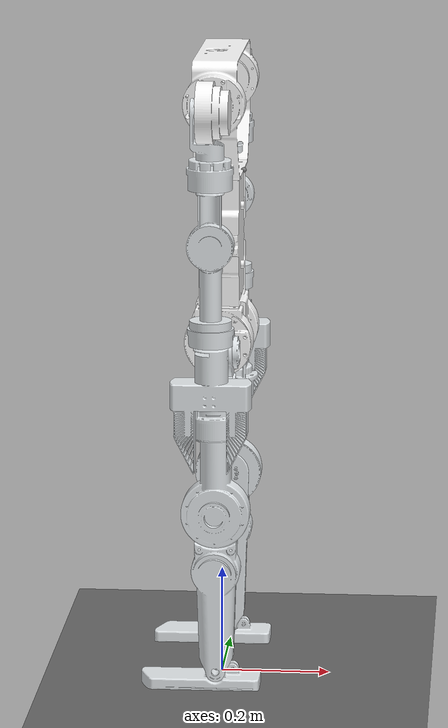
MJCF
<mujoco model="k-bot_sim">
  <default>
    <joint limited="true" damping="0.01" armature="0.01" frictionloss="0.01" />
    <geom condim="4" contype="1" conaffinity="15" friction="0.9 0.2 0.2" solref="0.001 2" />
    <motor ctrllimited="true" />
    <equality solref="0.001 2" />
    <default class="visualgeom">
      <geom material="visualgeom" condim="1" contype="0" conaffinity="0" />
    </default>
  </default>

  <compiler angle="radian" meshdir="meshes" eulerseq="zyx" autolimits="true" />

  <asset>
    <texture name="texplane" type="2d" builtin="checker" rgb1=".0 .0 .0" rgb2=".8 .8 .8" width="100" height="100" />
    <material name="matplane" reflectance="0." texture="texplane" texrepeat="1 1" texuniform="true" />
    <material name="body1-part_material" rgba="1 1 1 1" />
    <material name="imu_material" rgba="0.61568627 0.81176471 0.92941176 1" />
    <material name="shoulder_material" rgba="1 1 1 1" />
    <material name="shoulder_material_2" rgba="1 1 1 1" />
    <material name="arm1_top_material" rgba="0.89803922 0.91764706 0.92941176 1" />
    <material name="arm1_top_2_material" rgba="0.89803922 0.91764706 0.92941176 1" />
    <material name="leg0_shell_material" rgba="0.89803922 0.91764706 0.92941176 1" />
    <material name="leg0_shell_material_2" rgba="0.89803922 0.91764706 0.92941176 1" />
    <material name="arm2_shell_material" rgba="0.89803922 0.91764706 0.92941176 1" />
    <material name="arm2_shell_material_2" rgba="0.89803922 0.91764706 0.92941176 1" />
    <material name="leg1_shell_material" rgba="0.89803922 0.91764706 0.92941176 1" />
    <material name="leg1_shell3_material" rgba="0.89803922 0.91764706 0.92941176 1" />
    <material name="arm3_shell_material" rgba="0.89803922 0.91764706 0.92941176 1" />
    <material name="arm3_shell2_material" rgba="0.89803922 0.91764706 0.92941176 1" />
    <material name="leg2_shell_material" rgba="0.89803922 0.91764706 0.92941176 1" />
    <material name="leg2_shell_material_2" rgba="0.89803922 0.91764706 0.92941176 1" />
    <material name="hand_shell_material" rgba="0.89803922 0.91764706 0.92941176 1" />
    <material name="hand_shell_material_2" rgba="0.89803922 0.91764706 0.92941176 1" />
    <material name="leg3_shell1_material" rgba="0.89803922 0.91764706 0.92941176 1" />
    <material name="leg3_shell11_material" rgba="0.89803922 0.91764706 0.92941176 1" />
    <material name="foot3_material" rgba="0.89803922 0.91764706 0.92941176 1" />
    <material name="foot1_material" rgba="0.89803922 0.91764706 0.92941176 1" />
    <material name="default_material" rgba="0.7 0.7 0.7 1" />
    <mesh name="body1-part_collision.stl" file="body1-part_collision.stl" />
    <mesh name="body1-part.stl" file="body1-part.stl" />
    <mesh name="imu.stl" file="imu.stl" />
    <mesh name="shoulder.convex.stl" file="shoulder.convex.stl" />
    <mesh name="shoulder.stl" file="shoulder.stl" />
    <mesh name="arm1_top_collision.stl" file="arm1_top_collision.stl" />
    <mesh name="arm1_top.stl" file="arm1_top.stl" />
    <mesh name="arm2_shell_collision.stl" file="arm2_shell_collision.stl" />
    <mesh name="arm2_shell.stl" file="arm2_shell.stl" />
    <mesh name="arm3_shell.convex.stl" file="arm3_shell.convex.stl" />
    <mesh name="arm3_shell.stl" file="arm3_shell.stl" />
    <mesh name="hand_shell.convex.stl" file="hand_shell.convex.stl" />
    <mesh name="hand_shell.stl" file="hand_shell.stl" />
    <mesh name="shoulder_2.convex.stl" file="shoulder_2.convex.stl" />
    <mesh name="shoulder_2.stl" file="shoulder_2.stl" />
    <mesh name="arm1_top_2_collision.stl" file="arm1_top_2_collision.stl" />
    <mesh name="arm1_top_2.stl" file="arm1_top_2.stl" />
    <mesh name="arm2_shell_2_collision.stl" file="arm2_shell_2_collision.stl" />
    <mesh name="arm2_shell_2.stl" file="arm2_shell_2.stl" />
    <mesh name="arm3_shell2.convex.stl" file="arm3_shell2.convex.stl" />
    <mesh name="arm3_shell2.stl" file="arm3_shell2.stl" />
    <mesh name="hand_shell_2.convex.stl" file="hand_shell_2.convex.stl" />
    <mesh name="hand_shell_2.stl" file="hand_shell_2.stl" />
    <mesh name="leg0_shell.convex.stl" file="leg0_shell.convex.stl" />
    <mesh name="leg0_shell.stl" file="leg0_shell.stl" />
    <mesh name="leg1_shell_collision.stl" file="leg1_shell_collision.stl" />
    <mesh name="leg1_shell.stl" file="leg1_shell.stl" />
    <mesh name="leg2_shell_collision.stl" file="leg2_shell_collision.stl" />
    <mesh name="leg2_shell.stl" file="leg2_shell.stl" />
    <mesh name="leg3_shell1_collision.stl" file="leg3_shell1_collision.stl" />
    <mesh name="leg3_shell1.stl" file="leg3_shell1.stl" />
    <mesh name="foot1.convex.stl" file="foot1.convex.stl" />
    <mesh name="foot1.stl" file="foot1.stl" />
    <mesh name="leg0_shell_2.convex.stl" file="leg0_shell_2.convex.stl" />
    <mesh name="leg0_shell_2.stl" file="leg0_shell_2.stl" />
    <mesh name="leg1_shell3_collision.stl" file="leg1_shell3_collision.stl" />
    <mesh name="leg1_shell3.stl" file="leg1_shell3.stl" />
    <mesh name="leg2_shell_2_collision.stl" file="leg2_shell_2_collision.stl" />
    <mesh name="leg2_shell_2.stl" file="leg2_shell_2.stl" />
    <mesh name="leg3_shell11_collision.stl" file="leg3_shell11_collision.stl" />
    <mesh name="leg3_shell11.stl" file="leg3_shell11.stl" />
    <mesh name="foot3.convex.stl" file="foot3.convex.stl" />
    <mesh name="foot3.stl" file="foot3.stl" />
  </asset>

  <worldbody>
    <light directional="true" diffuse="0.4 0.4 0.4" specular="0.1 0.1 0.1" pos="0 0 5.0" dir="0 0 -1" castshadow="false" />
    <light directional="true" diffuse="0.6 0.6 0.6" specular="0.2 0.2 0.2" pos="0 0 4" dir="0 0 -1" />
    <geom name="ground" type="plane" pos="0 0 0" size="10 10 0.001" quat="1 0 0 0" material="matplane" condim="3" conaffinity="15" />
    <body name="base" pos="0.00000000 0.00000000 1.08214376" quat="1 0 0 0">
      <freejoint name="floating_base" />
      <body name="body1-part" pos="0.0 0.0009999996829318347 -7.963267107333194e-07" quat="0.7073882691671998 0.706825181105366 0.0 0.0">
        <inertial pos="-0.00015250656426878118 -0.21412907127294728 -9.448472646958203e-05" quat="1.0 0.0 0.0 0.0" mass="9.415837554" diaginertia="0.4061015675155548 0.09673200066103671 0.3215044414591054" />
        <geom name="body1-part_collision_0" pos="0 0 0" quat="1.0 0.0 0.0 0.0" type="mesh" mesh="body1-part_collision.stl" rgba="0 0 0 0" />
        <geom name="body1-part_visual" pos="0 0 0" quat="1.0 0.0 0.0 0.0" material="body1-part_material" type="mesh" mesh="body1-part.stl" />
        <body name="shoulder" pos="-1.0603758999999933e-05 0.018089562004361112 0.18849980999999996" quat="-5.717462085448636e-16 2.3205103233562514e-08 0.9999999999999996 2.3205103233562514e-08">
          <joint name="left_shoulder_pitch_03" type="hinge" range="0 3.1415927" axis="0 0 1" />
          <inertial pos="-0.0021439510530744978 5.4982726779193186e-05 -0.06648326479994976" quat="1.0 0.0 0.0 0.0" mass="1.1073556900000001" diaginertia="0.0014805078716798393 0.0010392374551579696 0.0009859290096334028" />
          <geom name="shoulder_collision_0" pos="0 0 0" quat="1.0 0.0 0.0 0.0" type="mesh" mesh="shoulder.convex.stl" rgba="0 0 0 0" />
          <geom name="shoulder_visual" pos="0 0 0" quat="1.0 0.0 0.0 0.0" material="shoulder_material" type="mesh" mesh="shoulder.stl" />
          <body name="arm1_top" pos="0.023511964 5.6278358217861975e-05 -0.06749999990621787" quat="0.5000000133974484 0.4999999999999999 0.4999999866025518 0.4999999999999999">
            <joint name="left_shoulder_roll_03" type="hinge" range="-3.6302848 0.47996554" axis="0 0 -1" />
            <inertial pos="-0.09948603961018607 -1.163023470429744e-06 -0.019082499611823907" quat="1.0 0.0 0.0 0.0" mass="0.5727323900000001" diaginertia="0.00045281536968184283 0.0010755180431184983 0.0010349421770212762" />
            <geom name="arm1_top_collision_0" pos="0 0 0" quat="1.0 0.0 0.0 0.0" type="mesh" mesh="arm1_top_collision.stl" rgba="0 0 0 0" />
            <geom name="arm1_top_visual" pos="0 0 0" quat="1.0 0.0 0.0 0.0" material="arm1_top_material" type="mesh" mesh="arm1_top.stl" />
            <body name="arm2_shell" pos="-0.14049999999999996 -1.5083317163881439e-09 -0.023499999129165863" quat="0.49999999820510366 -0.5000000249999992 0.499999988397448 -0.499999988397448">
              <joint name="left_shoulder_yaw_02" type="hinge" range="-1.5707963 1.5707963" axis="0 0 1" />
              <inertial pos="-0.0063392296102198434 0.0 -0.0904821109301573" quat="1.0 0.0 0.0 0.0" mass="0.51067762" diaginertia="0.0006753518437663356 0.0005324861864496071 0.0002548209726832716" />
              <geom name="arm2_shell_collision_0" pos="0 0 0" quat="1.0 0.0 0.0 0.0" type="mesh" mesh="arm2_shell_collision.stl" rgba="0 0 0 0" />
              <geom name="arm2_shell_visual" pos="0 0 0" quat="1.0 0.0 0.0 0.0" material="arm2_shell_material" type="mesh" mesh="arm2_shell.stl" />
              <body name="arm3_shell" pos="-0.027 -4.64102069112142e-11 -0.09799999974544849" quat="1.640848623142701e-08 -0.707106790659974 -1.6408485791763322e-08 -0.7071067717131209">
                <joint name="left_elbow_02" type="hinge" range="-2.5307274 0" axis="0 0 1" />
                <inertial pos="-0.14016867364356536 -3.717439453122118e-10 0.019432851288742756" quat="1.0 0.0 0.0 0.0" mass="0.5785364000000001" diaginertia="0.00042811744536643573 0.0013539990986906295 0.0013317921733241934" />
                <geom name="arm3_shell_collision_0" pos="0 0 0" quat="1.0 0.0 0.0 0.0" type="mesh" mesh="arm3_shell.convex.stl" rgba="0 0 0 0" />
                <geom name="arm3_shell_visual" pos="0 0 0" quat="1.0 0.0 0.0 0.0" material="arm3_shell_material" type="mesh" mesh="arm3_shell.stl" />
                <body name="hand_shell" pos="-0.18249999999999997 -1.5083317163881439e-09 0.021500000870834136" quat="0.49999999820510366 -0.5000000249999992 0.499999988397448 -0.499999988397448">
                  <joint name="left_wrist_02" type="hinge" range="-3.1415927 3.1415927" axis="0 0 1" />
                  <inertial pos="0.000708974660250137 0.00012975738648229475 -0.074657370365049" quat="1.0 0.0 0.0 0.0" mass="0.7930633560000001" diaginertia="0.002033598085511773 0.0028694095214354134 0.0012795940143811779" />
                  <geom name="hand_shell_collision_0" pos="0 0 0" quat="1.0 0.0 0.0 0.0" type="mesh" mesh="hand_shell.convex.stl" rgba="0 0 0 0" />
                  <geom name="hand_shell_visual" pos="0 0 0" quat="1.0 0.0 0.0 0.0" material="hand_shell_material" type="mesh" mesh="hand_shell.stl" />
                </body>
              </body>
            </body>
          </body>
        </body>
        <body name="shoulder_2" pos="-1.0603759e-05 0.018089564 -0.18850019" quat="2.32051034556071e-08 0.0 0.0 -0.9999999999999998">
          <joint name="right_shoulder_pitch_03" type="hinge" range="-3.1415927 0" axis="0 0 1" />
          <inertial pos="-0.00214394616645963 -5.498714744706848e-05 -0.06648329999671351" quat="1.0 0.0 0.0 0.0" mass="1.10735447" diaginertia="0.0014805055513914607 0.0010392363644282426 0.0009859285690821402" />
          <geom name="shoulder_2_collision_0" pos="0 0 0" quat="1.0 0.0 0.0 0.0" type="mesh" mesh="shoulder_2.convex.stl" rgba="0 0 0 0" />
          <geom name="shoulder_2_visual" pos="0 0 0" quat="1.0 0.0 0.0 0.0" material="shoulder_material_2" type="mesh" mesh="shoulder_2.stl" />
          <body name="arm1_top_2" pos="0.023511963999999996 -5.627835821786203e-05 -0.06749999985980766" quat="0.49999998839744775 0.5000000249999997 -0.500000011602551 -0.49999997499999993">
            <joint name="right_shoulder_roll_03" type="hinge" range="-0.47996554 3.6302848" axis="0 0 1" />
            <inertial pos="-0.0994860712208834 -1.0854900129017722e-06 0.0180824641107766" quat="1.0 0.0 0.0 0.0" mass="0.57273186" diaginertia="0.00045281497091044417 0.0010755170174298718 0.0010349414496449352" />
            <geom name="arm1_top_2_collision_0" pos="0 0 0" quat="1.0 0.0 0.0 0.0" type="mesh" mesh="arm1_top_2_collision.stl" rgba="0 0 0 0" />
            <geom name="arm1_top_2_visual" pos="0 0 0" quat="1.0 0.0 0.0 0.0" material="arm1_top_2_material" type="mesh" mesh="arm1_top_2.stl" />
            <body name="arm2_shell_2" pos="-0.14049999999999999 4.64102069112142e-11 0.02249999912916586" quat="1.640848623142701e-08 -0.707106790659974 1.6408485791763322e-08 0.7071067717131209">
              <joint name="right_shoulder_yaw_02" type="hinge" range="-1.5707963 1.5707963" axis="0 0 -1" />
              <inertial pos="-2.431455634827428e-10 -0.006339229610219842 0.08998211068701173" quat="1.0 0.0 0.0 0.0" mass="0.51067762" diaginertia="0.0005324861845826297 0.000675351841899358 0.00025482097268327166" />
              <geom name="arm2_shell_2_collision_0" pos="0 0 0" quat="1.0 0.0 0.0 0.0" type="mesh" mesh="arm2_shell_2_collision.stl" rgba="0 0 0 0" />
              <geom name="arm2_shell_2_visual" pos="0 0 0" quat="1.0 0.0 0.0 0.0" material="arm2_shell_material_2" type="mesh" mesh="arm2_shell_2.stl" />
              <body name="arm3_shell2" pos="2.0814131093671585e-10 -0.027000000000000003 0.0975" quat="0.5000000116025517 -0.5000000017948966 0.49999999820510327 0.4999999883974484">
                <joint name="right_elbow_02" type="hinge" range="0 2.5307274" axis="0 0 1" />
                <inertial pos="-0.14016867364356536 -3.717439453122118e-10 0.019432851288742756" quat="1.0 0.0 0.0 0.0" mass="0.5785364000000001" diaginertia="0.00042811744536643573 0.0013539990986906295 0.0013317921733241934" />
                <geom name="arm3_shell2_collision_0" pos="0 0 0" quat="1.0 0.0 0.0 0.0" type="mesh" mesh="arm3_shell2.convex.stl" rgba="0 0 0 0" />
                <geom name="arm3_shell2_visual" pos="0 0 0" quat="1.0 0.0 0.0 0.0" material="arm3_shell2_material" type="mesh" mesh="arm3_shell2.stl" />
                <body name="hand_shell_2" pos="-0.18249999999999997 -1.5083317161660992e-09 0.021500000870834136" quat="0.49999997499999954 0.500000001794897 0.5000000116025511 0.5000000116025513">
                  <joint name="right_wrist_02" type="hinge" range="-3.1415927 3.1415927" axis="0 0 1" />
                  <inertial pos="0.000708974660250137 0.00012975738648229475 -0.074657370365049" quat="1.0 0.0 0.0 0.0" mass="0.7930633560000001" diaginertia="0.002033598085511773 0.0028694095214354134 0.0012795940143811779" />
                  <geom name="hand_shell_2_collision_0" pos="0 0 0" quat="1.0 0.0 0.0 0.0" type="mesh" mesh="hand_shell_2.convex.stl" rgba="0 0 0 0" />
                  <geom name="hand_shell_2_visual" pos="0 0 0" quat="1.0 0.0 0.0 0.0" material="hand_shell_material_2" type="mesh" mesh="hand_shell_2.stl" />
                </body>
              </body>
            </body>
          </body>
        </body>
        <body name="leg0_shell" pos="-1.0608550148631657e-05 -0.43201043164593794 0.0887000068648673" quat="2.3205103394374763e-08 7.493212228217869e-16 0.9999999999999971 -7.320510292968884e-08">
          <joint name="left_hip_pitch_04" type="hinge" range="-1.5707963 1.5707963" axis="0 0 1" />
          <inertial pos="-0.003746324486178213 -5.30704079226868e-10 -0.06812512159159122" quat="1.0 0.0 0.0 0.0" mass="1.3234480570000002" diaginertia="0.0018858182013085161 0.001424832171389183 0.0012997049050806671" />
          <geom name="leg0_shell_collision_0" pos="0 0 0" quat="1.0 0.0 0.0 0.0" type="mesh" mesh="leg0_shell.convex.stl" rgba="0 0 0 0" />
          <geom name="leg0_shell_visual" pos="0 0 0" quat="1.0 0.0 0.0 0.0" material="leg0_shell_material" type="mesh" mesh="leg0_shell.stl" />
          <body name="leg1_shell" pos="0.027499999999999972 -1.543386042968109e-09 -0.06950000154338605" quat="0.5000000133974484 -0.4999999999999999 -0.4999999866025518 0.4999999999999999">
            <joint name="left_hip_roll_03" type="hinge" range="-3.1852259 0.34906585" axis="0 0 1" />
            <inertial pos="-0.11252357996383634 0.0005288807919385997 0.025258644134954013" quat="1.0 0.0 0.0 0.0" mass="1.2643519300000001" diaginertia="0.001480722299407104 0.0024857502211153284 0.002413187112415161" />
            <geom name="leg1_shell_collision_0" pos="0 0 0" quat="1.0 0.0 0.0 0.0" type="mesh" mesh="leg1_shell_collision.stl" rgba="0 0 0 0" />
            <geom name="leg1_shell_visual" pos="0 0 0" quat="1.0 0.0 0.0 0.0" material="leg1_shell_material" type="mesh" mesh="leg1_shell.stl" />
            <body name="leg2_shell" pos="-0.15749999999999997 0.00011981393 0.027499998456613956" quat="0.7071067906599741 -0.0 0.707106771713121 0.0">
              <joint name="left_hip_yaw_03" type="hinge" range="-1.5707963 1.5707963" axis="0 0 1" />
              <inertial pos="4.0855477721508534e-07 0.0005316844118462806 -0.13730778343676694" quat="1.0 0.0 0.0 0.0" mass="1.820922667" diaginertia="0.003118121982315594 0.004225341330146898 0.0020643672406963944" />
              <geom name="leg2_shell_collision_0" pos="0 0 0" quat="1.0 0.0 0.0 0.0" type="mesh" mesh="leg2_shell_collision.stl" rgba="0 0 0 0" />
              <geom name="leg2_shell_visual" pos="0 0 0" quat="1.0 0.0 0.0 0.0" material="leg2_shell_material" type="mesh" mesh="leg2_shell.stl" />
              <body name="leg3_shell1" pos="0.0 -0.026999999999999993 -0.14250000111820607" quat="0.7071067553046346 0.7071068070684594 0.0 0.0">
                <joint name="left_knee_04" type="hinge" range="0 2.0943951" axis="0 0 -1" />
                <inertial pos="0.0010978724929563855 -0.13132151953133744 -0.023162295394724867" quat="1.0 0.0 0.0 0.0" mass="1.10995541" diaginertia="0.006739845799719679 0.001012730687089295 0.006745576240125188" />
                <geom name="leg3_shell1_collision_0" pos="0 0 0" quat="1.0 0.0 0.0 0.0" type="mesh" mesh="leg3_shell1_collision.stl" rgba="0 0 0 0" />
                <geom name="leg3_shell1_visual" pos="0 0 0" quat="1.0 0.0 0.0 0.0" material="leg3_shell1_material" type="mesh" mesh="leg3_shell1.stl" />
                <body name="foot1" pos="0.0 -0.30000000013923045 0.009499991182060727" quat="0.9999999999999989 4.6410206666284814e-08 0.0 0.0">
                  <joint name="left_ankle_02" type="hinge" range="-0.6981317 0.6981317" axis="0 0 -1" />
                  <inertial pos="0.02134990704811795 -0.019418958531554592 -0.019276222305656024" quat="1.0 0.0 0.0 0.0" mass="0.58209124" diaginertia="0.0002838753702978436 0.002188226940492543 0.0020237350419067264" />
                  <geom name="foot1_collision_0" pos="0 0 0" quat="1.0 0.0 0.0 0.0" type="mesh" mesh="foot1.convex.stl" rgba="0 0 0 0" />
                  <geom name="foot1_visual" pos="0 0 0" quat="1.0 0.0 0.0 0.0" material="foot1_material" type="mesh" mesh="foot1.stl" />
                </body>
              </body>
            </body>
          </body>
        </body>
        <body name="leg0_shell_2" pos="-1.0600293772844438e-05 -0.4320104468591277 -0.08919999313513188" quat="-2.1084440043354483e-16 2.3205103394374773e-08 -4.9999999585104096e-08 -0.9999999999999986">
          <joint name="right_hip_pitch_04" type="hinge" range="-1.5707963 1.5707963" axis="0 0 1" />
          <inertial pos="-0.003746324486178213 -5.30704079226868e-10 -0.06762512159159122" quat="1.0 0.0 0.0 0.0" mass="1.3234480570000002" diaginertia="0.0018858182013085161 0.001424832171389183 0.0012997049050806671" />
          <geom name="leg0_shell_2_collision_0" pos="0 0 0" quat="1.0 0.0 0.0 0.0" type="mesh" mesh="leg0_shell_2.convex.stl" rgba="0 0 0 0" />
          <geom name="leg0_shell_2_visual" pos="0 0 0" quat="1.0 0.0 0.0 0.0" material="leg0_shell_material_2" type="mesh" mesh="leg0_shell_2.stl" />
          <body name="leg1_shell3" pos="0.027499999999999972 -1.5433860431346424e-09 -0.06900000154338605" quat="0.5000000116025517 0.49999997500000004 -0.5000000116025511 -0.5000000017948968">
            <joint name="right_hip_roll_03" type="hinge" range="-0.34906585 3.1852259" axis="0 0 1" />
            <inertial pos="-0.11252358418706353 -0.0005288879516895658 0.02525863895910433" quat="1.0 0.0 0.0 0.0" mass="1.26435173" diaginertia="0.0014807220164984244 0.002485749979629834 0.002413186730835335" />
            <geom name="leg1_shell3_collision_0" pos="0 0 0" quat="1.0 0.0 0.0 0.0" type="mesh" mesh="leg1_shell3_collision.stl" rgba="0 0 0 0" />
            <geom name="leg1_shell3_visual" pos="0 0 0" quat="1.0 0.0 0.0 0.0" material="leg1_shell3_material" type="mesh" mesh="leg1_shell3.stl" />
            <body name="leg2_shell_2" pos="-0.15749999999999997 -0.00011981393000000101 0.027499998536998718" quat="3.573163041227958e-16 -0.7071068001334262 -3.573162849742633e-16 -0.7071067622396683">
              <joint name="right_hip_yaw_03" type="hinge" range="-1.5707963 1.5707963" axis="0 0 1" />
              <inertial pos="4.0855477721508534e-07 0.0005316844118462806 -0.13730778343676694" quat="1.0 0.0 0.0 0.0" mass="1.820922667" diaginertia="0.003118121982315594 0.004225341330146898 0.0020643672406963944" />
              <geom name="leg2_shell_2_collision_0" pos="0 0 0" quat="1.0 0.0 0.0 0.0" type="mesh" mesh="leg2_shell_2_collision.stl" rgba="0 0 0 0" />
              <geom name="leg2_shell_2_visual" pos="0 0 0" quat="1.0 0.0 0.0 0.0" material="leg2_shell_material_2" type="mesh" mesh="leg2_shell_2.stl" />
              <body name="leg3_shell11" pos="0.0 -0.026999999999999993 -0.14250000111820607" quat="0.7071067553046346 0.7071068070684594 0.0 0.0">
                <joint name="right_knee_04" type="hinge" range="-2.0943951 0" axis="0 0 -1" />
                <inertial pos="-0.0010979208720722662 -0.13132176227251938 -0.023162198059025228" quat="1.0 0.0 0.0 0.0" mass="1.10996161" diaginertia="0.006739857987300133 0.0010127351585175947 0.006745588887673965" />
                <geom name="leg3_shell11_collision_0" pos="0 0 0" quat="1.0 0.0 0.0 0.0" type="mesh" mesh="leg3_shell11_collision.stl" rgba="0 0 0 0" />
                <geom name="leg3_shell11_visual" pos="0 0 0" quat="1.0 0.0 0.0 0.0" material="leg3_shell11_material" type="mesh" mesh="leg3_shell11.stl" />
                <body name="foot3" pos="2.153907282807268e-18 -0.3000000000464102 -0.035500000000000004" quat="5.384768207018173e-16 -2.320510333314241e-08 0.9999999999999996 -2.320510333314241e-08">
                  <joint name="right_ankle_02" type="hinge" range="-0.6981317 0.6981317" axis="0 0 1.0" />
                  <inertial pos="0.02134992304317914 -0.019418963220724724 -0.023723771995791686" quat="1.0 0.0 0.0 0.0" mass="0.58209108" diaginertia="0.0002838753748975717 0.00218822676565083 0.002023734835894537" />
                  <geom name="foot3_collision_0" pos="0 0 0" quat="1.0 0.0 0.0 0.0" type="mesh" mesh="foot3.convex.stl" rgba="0 0 0 0" />
                  <geom name="foot3_visual" pos="0 0 0" quat="1.0 0.0 0.0 0.0" material="foot3_material" type="mesh" mesh="foot3.stl" />
                </body>
              </body>
            </body>
          </body>
        </body>
        <site name="imu" pos="0.039989396 -0.12791044000000001 -2.6794896579307448e-11" quat="0.7071067906599741 -0.707106771713121 0.0 0.0" />
      </body>
      <site name="base_site" pos="0 0 0" quat="1 0 0 0" />
    </body>
  </worldbody>

  <actuator>
    <position name="left_shoulder_pitch_03_ctrl" joint="left_shoulder_pitch_03" kp="150.00000000" kv="8.00000000" forcerange="-60.00000000 60.00000000" forcelimited="true" ctrlrange="0.0 3.1415927" ctrllimited="true" />
    <position name="left_shoulder_roll_03_ctrl" joint="left_shoulder_roll_03" kp="150.00000000" kv="8.00000000" forcerange="-60.00000000 60.00000000" forcelimited="true" ctrlrange="-3.6302848 0.47996554" ctrllimited="true" />
    <position name="left_shoulder_yaw_02_ctrl" joint="left_shoulder_yaw_02" kp="50.00000000" kv="5.00000000" forcerange="-17.00000000 17.00000000" forcelimited="true" ctrlrange="-1.5707963 1.5707963" ctrllimited="true" />
    <position name="left_elbow_02_ctrl" joint="left_elbow_02" kp="50.00000000" kv="5.00000000" forcerange="-17.00000000 17.00000000" forcelimited="true" ctrlrange="-2.5307274 0.0" ctrllimited="true" />
    <position name="left_wrist_02_ctrl" joint="left_wrist_02" kp="20.00000000" kv="2.00000000" forcerange="-17.00000000 17.00000000" forcelimited="true" ctrlrange="-3.1415927 3.1415927" ctrllimited="true" />
    <position name="right_shoulder_pitch_03_ctrl" joint="right_shoulder_pitch_03" kp="150.00000000" kv="8.00000000" forcerange="-60.00000000 60.00000000" forcelimited="true" ctrlrange="-3.1415927 0.0" ctrllimited="true" />
    <position name="right_shoulder_roll_03_ctrl" joint="right_shoulder_roll_03" kp="150.00000000" kv="8.00000000" forcerange="-60.00000000 60.00000000" forcelimited="true" ctrlrange="-0.47996554 3.6302848" ctrllimited="true" />
    <position name="right_shoulder_yaw_02_ctrl" joint="right_shoulder_yaw_02" kp="50.00000000" kv="5.00000000" forcerange="-17.00000000 17.00000000" forcelimited="true" ctrlrange="-1.5707963 1.5707963" ctrllimited="true" />
    <position name="right_elbow_02_ctrl" joint="right_elbow_02" kp="50.00000000" kv="5.00000000" forcerange="-17.00000000 17.00000000" forcelimited="true" ctrlrange="0.0 2.5307274" ctrllimited="true" />
    <position name="right_wrist_02_ctrl" joint="right_wrist_02" kp="20.00000000" kv="2.00000000" forcerange="-17.00000000 17.00000000" forcelimited="true" ctrlrange="-3.1415927 3.1415927" ctrllimited="true" />
    <position name="left_hip_pitch_04_ctrl" joint="left_hip_pitch_04" kp="250.00000000" kv="30.00000000" forcerange="-120.00000000 120.00000000" forcelimited="true" ctrlrange="-1.5707963 1.5707963" ctrllimited="true" />
    <position name="left_hip_roll_03_ctrl" joint="left_hip_roll_03" kp="150.00000000" kv="8.00000000" forcerange="-60.00000000 60.00000000" forcelimited="true" ctrlrange="-3.1852259 0.34906585" ctrllimited="true" />
    <position name="left_hip_yaw_03_ctrl" joint="left_hip_yaw_03" kp="150.00000000" kv="8.00000000" forcerange="-60.00000000 60.00000000" forcelimited="true" ctrlrange="-1.5707963 1.5707963" ctrllimited="true" />
    <position name="left_knee_04_ctrl" joint="left_knee_04" kp="200.00000000" kv="8.00000000" forcerange="-120.00000000 120.00000000" forcelimited="true" ctrlrange="0.0 2.0943951" ctrllimited="true" />
    <position name="left_ankle_02_ctrl" joint="left_ankle_02" kp="80.00000000" kv="10.00000000" forcerange="-17.00000000 17.00000000" forcelimited="true" ctrlrange="-0.6981317 0.6981317" ctrllimited="true" />
    <position name="right_hip_pitch_04_ctrl" joint="right_hip_pitch_04" kp="250.00000000" kv="30.00000000" forcerange="-120.00000000 120.00000000" forcelimited="true" ctrlrange="-1.5707963 1.5707963" ctrllimited="true" />
    <position name="right_hip_roll_03_ctrl" joint="right_hip_roll_03" kp="150.00000000" kv="8.00000000" forcerange="-60.00000000 60.00000000" forcelimited="true" ctrlrange="-0.34906585 3.1852259" ctrllimited="true" />
    <position name="right_hip_yaw_03_ctrl" joint="right_hip_yaw_03" kp="150.00000000" kv="8.00000000" forcerange="-60.00000000 60.00000000" forcelimited="true" ctrlrange="-1.5707963 1.5707963" ctrllimited="true" />
    <position name="right_knee_04_ctrl" joint="right_knee_04" kp="200.00000000" kv="8.00000000" forcerange="-120.00000000 120.00000000" forcelimited="true" ctrlrange="-2.0943951 0.0" ctrllimited="true" />
    <position name="right_ankle_02_ctrl" joint="right_ankle_02" kp="80.00000000" kv="10.00000000" forcerange="-17.00000000 17.00000000" forcelimited="true" ctrlrange="-0.6981317 0.6981317" ctrllimited="true" />
  </actuator>

  <sensor>
    <accelerometer name="imu_acc" site="imu" noise="0.01" />
    <gyro name="imu_gyro" site="imu" noise="0.01" />
    <magnetometer name="imu_mag" site="imu" noise="0.05" />
    <framepos name="base_link_pos" objtype="site" objname="imu" />
    <framequat name="base_link_quat" objtype="site" objname="imu" />
    <framelinvel name="base_link_vel" objtype="site" objname="imu" />
    <frameangvel name="base_link_ang_vel" objtype="site" objname="imu" />
  </sensor>
</mujoco>
